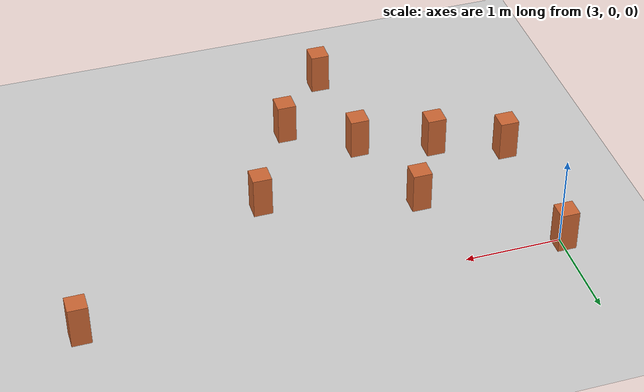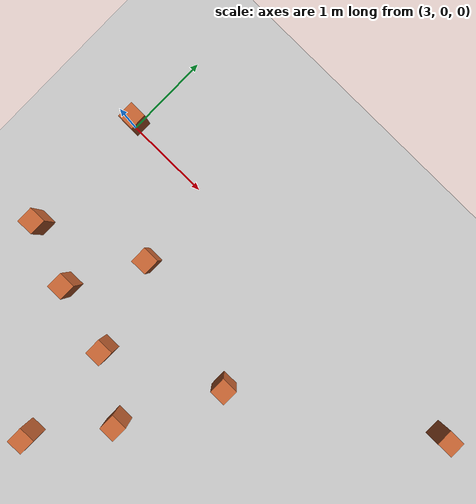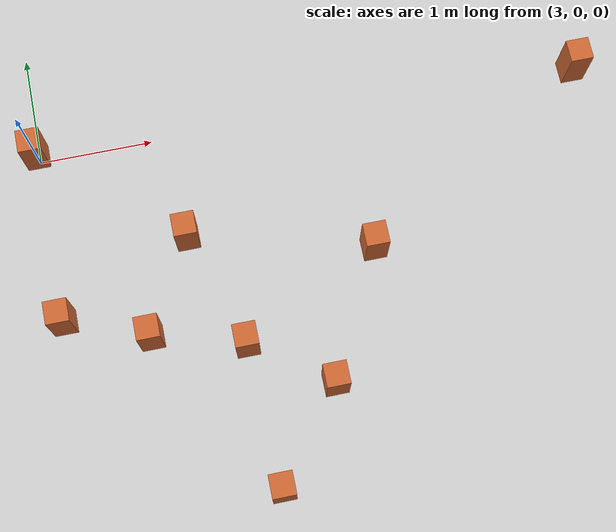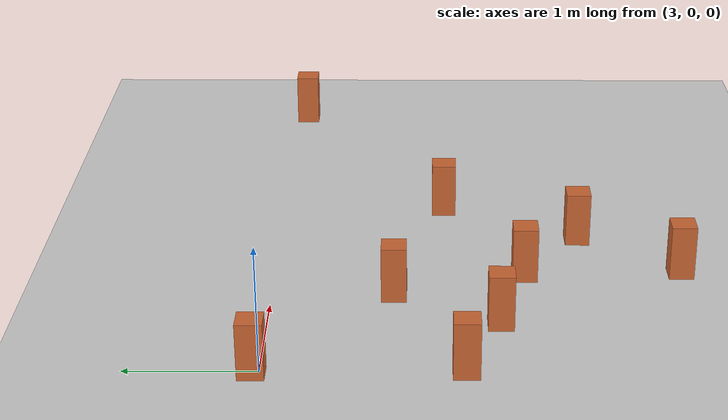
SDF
<sdf version="1.9">
 <world name="default">
  <model name="ground_plane">
   <static>true</static>
   <link name="link">
    <collision name="collision">
     <geometry><plane><normal>0 0 1</normal><size>100 100</size></plane></geometry>
     <surface><friction><ode><mu>100</mu><mu2>50</mu2></ode></friction></surface>
    </collision>
    <visual name="visual">
     <cast_shadows>false</cast_shadows>
     <geometry><plane><normal>0 0 1</normal><size>100 100</size></plane></geometry>
     <material>
      <ambient>0.6 0.6 0.6 1</ambient>
      <diffuse>0.8 0.8 0.8 1</diffuse>
      <specular>0.1 0.1 0.1 1</specular>
     </material>
    </visual>
    <inertial>
     <mass>1</mass>
     <inertia><ixx>1</ixx><ixy>0</ixy><ixz>0</ixz><iyy>1</iyy><iyz>0</iyz><izz>1</izz></inertia>
    </inertial>
   </link>
  </model>
  <model name="wood_cube_10cm_clone_1">
   <link name="link">
    <pose>0 0 0.05 0 -0 0</pose>
    <inertial>
     <mass>0.51670000000000005</mass>
     <inertia>
      <ixx>0.00086116700000000003</ixx>
      <ixy>0</ixy>
      <ixz>0</ixz>
      <iyy>0.00086116700000000003</iyy>
      <iyz>0</iyz>
      <izz>0.00086116700000000003</izz>
     </inertia>
    </inertial>
    <collision name="collision">
     <geometry><box><size>0.2 0.2 0.5</size></box></geometry>
     <surface>
      <contact>
       <poissons_ratio>0.34699999999999998</poissons_ratio>
       <elastic_modulus>8800000000</elastic_modulus>
       <ode><kp>100000</kp><kd>100</kd><max_vel>100</max_vel><min_depth>0.001</min_depth></ode>
      </contact>
      <friction>
       <torsional>
        <coefficient>1</coefficient>
        <use_patch_radius>false</use_patch_radius>
        <surface_radius>0.01</surface_radius>
       </torsional>
      </friction>
     </surface>
    </collision>
    <visual name="visual">
     <geometry><box><size>0.2 0.2 0.5</size></box></geometry>
     <material>
      <ambient>0.6 0.3 0.1 1</ambient>
      <diffuse>0.8 0.4 0.2 1</diffuse>
      <specular>0.1 0.1 0.1 1</specular>
     </material>
    </visual>
   </link>
   <pose>3 -1.5 0.150637 0 -0 0</pose>
   <static>false</static>
  </model>
  <model name="wood_cube_10cm_clone_2">
   <link name="link">
    <pose>0 0 0.05 0 -0 0</pose>
    <inertial>
     <mass>0.51670000000000005</mass>
     <inertia>
      <ixx>0.00086116700000000003</ixx>
      <ixy>0</ixy>
      <ixz>0</ixz>
      <iyy>0.00086116700000000003</iyy>
      <iyz>0</iyz>
      <izz>0.00086116700000000003</izz>
     </inertia>
    </inertial>
    <collision name="collision">
     <geometry><box><size>0.2 0.2 0.5</size></box></geometry>
     <surface>
      <contact>
       <poissons_ratio>0.34699999999999998</poissons_ratio>
       <elastic_modulus>8800000000</elastic_modulus>
       <ode><kp>100000</kp><kd>100</kd><max_vel>100</max_vel><min_depth>0.001</min_depth></ode>
      </contact>
      <friction>
       <torsional>
        <coefficient>1</coefficient>
        <use_patch_radius>false</use_patch_radius>
        <surface_radius>0.01</surface_radius>
       </torsional>
      </friction>
     </surface>
    </collision>
    <visual name="visual">
     <geometry><box><size>0.2 0.2 0.5</size></box></geometry>
     <material>
      <ambient>0.6 0.3 0.1 1</ambient>
      <diffuse>0.8 0.4 0.2 1</diffuse>
      <specular>0.1 0.1 0.1 1</specular>
     </material>
    </visual>
   </link>
   <pose>4.5 -2 0.150639 0 0 0</pose>
   <static>false</static>
  </model>
  <model name="wood_cube_10cm_clone_0_4">
   <link name="link">
    <pose>0 0 0.05 0 -0 0</pose>
    <inertial>
     <mass>0.51670000000000005</mass>
     <inertia>
      <ixx>0.00086116700000000003</ixx>
      <ixy>0</ixy>
      <ixz>0</ixz>
      <iyy>0.00086116700000000003</iyy>
      <iyz>0</iyz>
      <izz>0.00086116700000000003</izz>
     </inertia>
    </inertial>
    <collision name="collision">
     <geometry><box><size>0.2 0.2 0.5</size></box></geometry>
     <surface>
      <contact>
       <poissons_ratio>0.34699999999999998</poissons_ratio>
       <elastic_modulus>8800000000</elastic_modulus>
       <ode><kp>100000</kp><kd>100</kd><max_vel>100</max_vel><min_depth>0.001</min_depth></ode>
      </contact>
      <friction>
       <torsional>
        <coefficient>1</coefficient>
        <use_patch_radius>false</use_patch_radius>
        <surface_radius>0.01</surface_radius>
       </torsional>
      </friction>
     </surface>
    </collision>
    <visual name="visual">
     <geometry><box><size>0.2 0.2 0.5</size></box></geometry>
     <material>
      <ambient>0.6 0.3 0.1 1</ambient>
      <diffuse>0.8 0.4 0.2 1</diffuse>
      <specular>0.1 0.1 0.1 1</specular>
     </material>
    </visual>
   </link>
   <pose>2.98156 0.052452 0.149759 -0 -0 -0</pose>
   <static>false</static>
  </model>
  <model name="wood_cube_10cm_clone_0_5">
   <link name="link">
    <pose>0 0 0.05 0 -0 0</pose>
    <inertial>
     <mass>0.51670000000000005</mass>
     <inertia>
      <ixx>0.00086116700000000003</ixx>
      <ixy>0</ixy>
      <ixz>0</ixz>
      <iyy>0.00086116700000000003</iyy>
      <iyz>0</iyz>
      <izz>0.00086116700000000003</izz>
     </inertia>
    </inertial>
    <collision name="collision">
     <geometry><box><size>0.2 0.2 0.5</size></box></geometry>
     <surface>
      <contact>
       <poissons_ratio>0.34699999999999998</poissons_ratio>
       <elastic_modulus>8800000000</elastic_modulus>
       <ode><kp>100000</kp><kd>100</kd><max_vel>100</max_vel><min_depth>0.001</min_depth></ode>
      </contact>
      <friction>
       <torsional>
        <coefficient>1</coefficient>
        <use_patch_radius>false</use_patch_radius>
        <surface_radius>0.01</surface_radius>
       </torsional>
      </friction>
     </surface>
    </collision>
    <visual name="visual">
     <geometry><box><size>0.2 0.2 0.5</size></box></geometry>
     <material>
      <ambient>0.6 0.3 0.1 1</ambient>
      <diffuse>0.8 0.4 0.2 1</diffuse>
      <specular>0.1 0.1 0.1 1</specular>
     </material>
    </visual>
   </link>
   <pose>4.16508 -0.959148 0.149854 -0 0 -0</pose>
   <static>false</static>
  </model>
  <model name="wood_cube_10cm_clone_0_13">
   <link name="link">
    <pose>0 0 0.05 0 -0 0</pose>
    <inertial>
     <mass>0.51670000000000005</mass>
     <inertia>
      <ixx>0.00086116700000000003</ixx>
      <ixy>0</ixy>
      <ixz>0</ixz>
      <iyy>0.00086116700000000003</iyy>
      <iyz>0</iyz>
      <izz>0.00086116700000000003</izz>
     </inertia>
    </inertial>
    <collision name="collision">
     <geometry><box><size>0.2 0.2 0.5</size></box></geometry>
     <surface>
      <contact>
       <poissons_ratio>0.34699999999999998</poissons_ratio>
       <elastic_modulus>8800000000</elastic_modulus>
       <ode><kp>100000</kp><kd>100</kd><max_vel>100</max_vel><min_depth>0.001</min_depth></ode>
      </contact>
      <friction>
       <torsional>
        <coefficient>1</coefficient>
        <use_patch_radius>false</use_patch_radius>
        <surface_radius>0.01</surface_radius>
       </torsional>
      </friction>
     </surface>
    </collision>
    <visual name="visual">
     <geometry><box><size>0.2 0.2 0.5</size></box></geometry>
     <material>
      <ambient>0.6 0.3 0.1 1</ambient>
      <diffuse>0.8 0.4 0.2 1</diffuse>
      <specular>0.1 0.1 0.1 1</specular>
     </material>
    </visual>
   </link>
   <pose>5.74248 -1.36742 0.150312 0 -0 0</pose>
   <static>false</static>
  </model>
  <model name="wood_cube_10cm_clone_0_2_3">
   <link name="link">
    <pose>0 0 0.05 0 -0 0</pose>
    <inertial>
     <mass>0.51670000000000005</mass>
     <inertia>
      <ixx>0.00086116700000000003</ixx>
      <ixy>0</ixy>
      <ixz>0</ixz>
      <iyy>0.00086116700000000003</iyy>
      <iyz>0</iyz>
      <izz>0.00086116700000000003</izz>
     </inertia>
    </inertial>
    <collision name="collision">
     <geometry><box><size>0.2 0.2 0.5</size></box></geometry>
     <surface>
      <contact>
       <poissons_ratio>0.34699999999999998</poissons_ratio>
       <elastic_modulus>8800000000</elastic_modulus>
       <ode><kp>100000</kp><kd>100</kd><max_vel>100</max_vel><min_depth>0.001</min_depth></ode>
      </contact>
      <friction>
       <torsional>
        <coefficient>1</coefficient>
        <use_patch_radius>false</use_patch_radius>
        <surface_radius>0.01</surface_radius>
       </torsional>
      </friction>
     </surface>
    </collision>
    <visual name="visual">
     <geometry><box><size>0.2 0.2 0.5</size></box></geometry>
     <material>
      <ambient>0.6 0.3 0.1 1</ambient>
      <diffuse>0.8 0.4 0.2 1</diffuse>
      <specular>0.1 0.1 0.1 1</specular>
     </material>
    </visual>
   </link>
   <pose>4.56166 -3.2585 0.147377 0 0 -0</pose>
   <static>false</static>
  </model>
  <model name="wood_cube_10cm_clone_0_2_4">
   <link name="link">
    <pose>0 0 0.05 0 -0 0</pose>
    <inertial>
     <mass>0.51670000000000005</mass>
     <inertia>
      <ixx>0.00086116700000000003</ixx>
      <ixy>0</ixy>
      <ixz>0</ixz>
      <iyy>0.00086116700000000003</iyy>
      <iyz>0</iyz>
      <izz>0.00086116700000000003</izz>
     </inertia>
    </inertial>
    <collision name="collision">
     <geometry><box><size>0.2 0.2 0.5</size></box></geometry>
     <surface>
      <contact>
       <poissons_ratio>0.34699999999999998</poissons_ratio>
       <elastic_modulus>8800000000</elastic_modulus>
       <ode><kp>100000</kp><kd>100</kd><max_vel>100</max_vel><min_depth>0.001</min_depth></ode>
      </contact>
      <friction>
       <torsional>
        <coefficient>1</coefficient>
        <use_patch_radius>false</use_patch_radius>
        <surface_radius>0.01</surface_radius>
       </torsional>
      </friction>
     </surface>
    </collision>
    <visual name="visual">
     <geometry><box><size>0.2 0.2 0.5</size></box></geometry>
     <material>
      <ambient>0.6 0.3 0.1 1</ambient>
      <diffuse>0.8 0.4 0.2 1</diffuse>
      <specular>0.1 0.1 0.1 1</specular>
     </material>
    </visual>
   </link>
   <pose>7.86571 -0.068829 0.147695 -0 0 -0</pose>
   <static>false</static>
  </model>
  <model name="wood_cube_10cm_clone_0_2_7">
   <link name="link">
    <pose>0 0 0.05 0 -0 0</pose>
    <inertial>
     <mass>0.51670000000000005</mass>
     <inertia>
      <ixx>0.00086116700000000003</ixx>
      <ixy>0</ixy>
      <ixz>0</ixz>
      <iyy>0.00086116700000000003</iyy>
      <iyz>0</iyz>
      <izz>0.00086116700000000003</izz>
     </inertia>
    </inertial>
    <collision name="collision">
     <geometry><box><size>0.2 0.2 0.5</size></box></geometry>
     <surface>
      <contact>
       <poissons_ratio>0.34699999999999998</poissons_ratio>
       <elastic_modulus>8800000000</elastic_modulus>
       <ode><kp>100000</kp><kd>100</kd><max_vel>100</max_vel><min_depth>0.001</min_depth></ode>
      </contact>
      <friction>
       <torsional>
        <coefficient>1</coefficient>
        <use_patch_radius>false</use_patch_radius>
        <surface_radius>0.01</surface_radius>
       </torsional>
      </friction>
     </surface>
    </collision>
    <visual name="visual">
     <geometry><box><size>0.2 0.2 0.5</size></box></geometry>
     <material>
      <ambient>0.6 0.3 0.1 1</ambient>
      <diffuse>0.8 0.4 0.2 1</diffuse>
      <specular>0.1 0.1 0.1 1</specular>
     </material>
    </visual>
   </link>
   <pose>5.1699 -2.47303 0.147509 -0 -0 0</pose>
   <static>false</static>
  </model>
  <model name="wood_cube_10cm_clone_0_2_8">
   <link name="link">
    <pose>0 0 0.05 0 -0 0</pose>
    <inertial>
     <mass>0.51670000000000005</mass>
     <inertia>
      <ixx>0.00086116700000000003</ixx>
      <ixy>0</ixy>
      <ixz>0</ixz>
      <iyy>0.00086116700000000003</iyy>
      <iyz>0</iyz>
      <izz>0.00086116700000000003</izz>
     </inertia>
    </inertial>
    <collision name="collision">
     <geometry><box><size>0.2 0.2 0.5</size></box></geometry>
     <surface>
      <contact>
       <poissons_ratio>0.34699999999999998</poissons_ratio>
       <elastic_modulus>8800000000</elastic_modulus>
       <ode><kp>100000</kp><kd>100</kd><max_vel>100</max_vel><min_depth>0.001</min_depth></ode>
      </contact>
      <friction>
       <torsional>
        <coefficient>1</coefficient>
        <use_patch_radius>false</use_patch_radius>
        <surface_radius>0.01</surface_radius>
       </torsional>
      </friction>
     </surface>
    </collision>
    <visual name="visual">
     <geometry><box><size>0.2 0.2 0.5</size></box></geometry>
     <material>
      <ambient>0.6 0.3 0.1 1</ambient>
      <diffuse>0.8 0.4 0.2 1</diffuse>
      <specular>0.1 0.1 0.1 1</specular>
     </material>
    </visual>
   </link>
   <pose>3.71268 -1.77832 0.147553 0 0 0</pose>
   <static>false</static>
  </model>
 </world>
</sdf>
